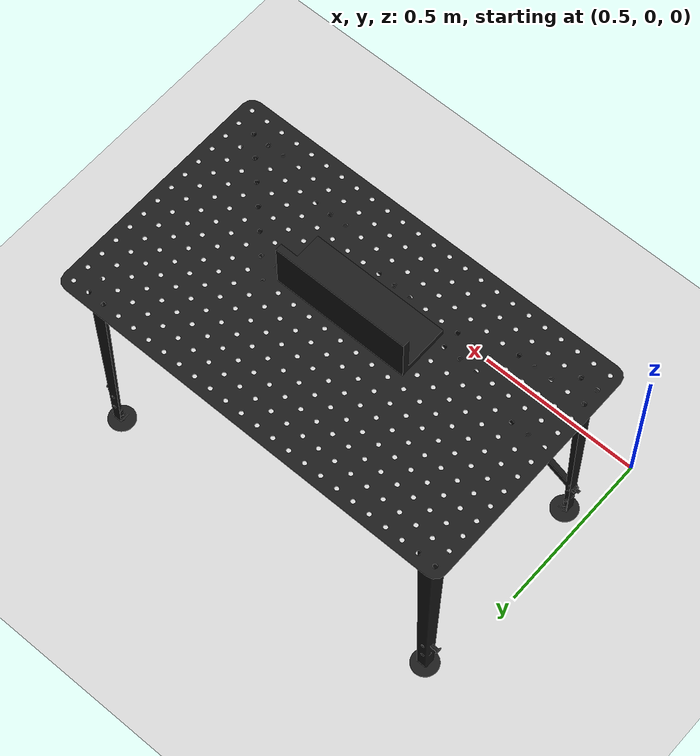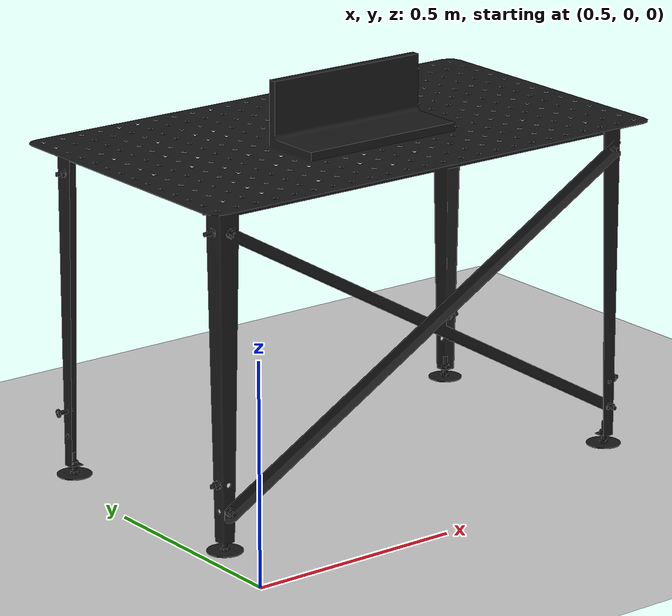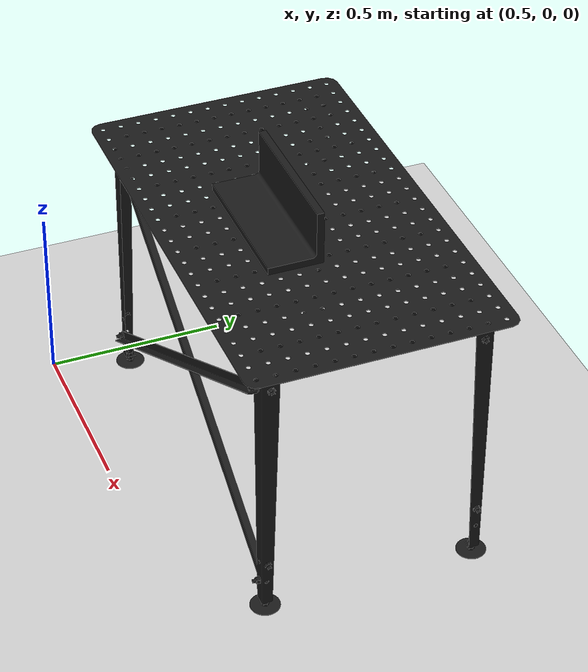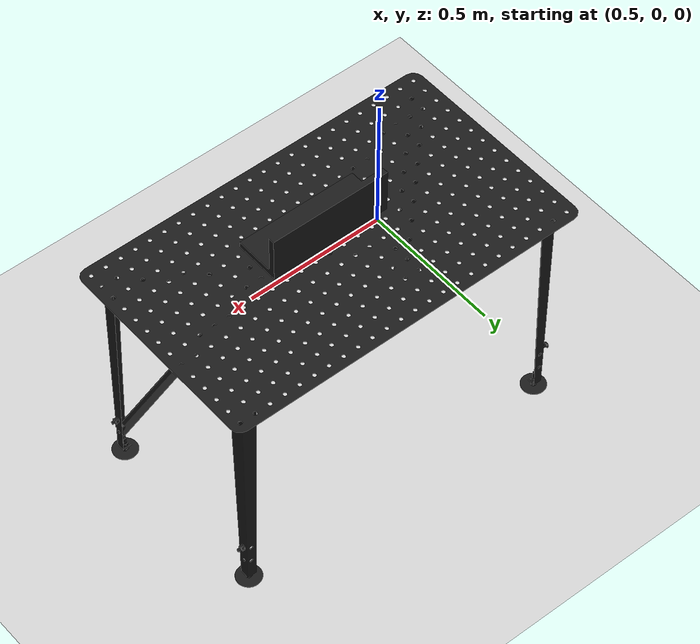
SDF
<?xml version="1.0" ?>

<sdf version="1.6">
  <world name="default">

    <!-- Plugin for simulating physics -->
    <plugin
      filename="gz-sim-physics-system"
      name="gz::sim::systems::Physics">
      <engine>
        <filename>libgz-physics-bullet-featherstone-plugin.so</filename>
      </engine>
    </plugin>

    <!-- Plugin for handling user commands -->
    <plugin
      filename="gz-sim-user-commands-system"
      name="gz::sim::systems::UserCommands">
    </plugin>

    <!-- Plugin for broadcasting scene updates -->
    <plugin
      filename="gz-sim-scene-broadcaster-system"
      name="gz::sim::systems::SceneBroadcaster">
    </plugin>

    <!-- Plugin for handling sensors like the LIDAR -->
    <plugin
      filename="gz-sim-sensors-system"
      name="gz::sim::systems::Sensors">
      <render_engine>ogre2</render_engine>
    </plugin>

    <!-- Plugin for IMU -->
    <plugin filename="gz-sim-imu-system"
      name="gz::sim::systems::Imu">
    </plugin>

    <!--Plugin for FT-->
    <plugin filename="gz-sim-forcetorque-system" name="gz::sim::systems::ForceTorque" />

    <!-- To add realistic gravity, do: 0.0 0.0 -9.8, otherwise do 0.0 0.0 0.0 -->
    <gravity>0.0 0.0 -9.8</gravity>

    <!-- Include a model of the Sun from an external URI -->
    <include>
      <uri>
        https://fuel.gazebosim.org/1.0/OpenRobotics/models/Sun
      </uri>
    </include>

    <!-- Local Ground Plane with modified friction -->
    <model name="ground_plane">
      <static>true</static>
      <link name="link">
        <collision name="collision">
          <geometry>
            <plane>
              <normal>0 0 1</normal>
            </plane>
          </geometry>
          <surface>
            <friction>
              <torsional>
                <coefficient>0.0</coefficient>
              </torsional>
            </friction>
          </surface>
        </collision>
        <visual name="visual">
          <geometry>
            <plane>
              <normal>0 0 1</normal>
              <size>100 100</size>
            </plane>
          </geometry>
          <material>
            <ambient>0.8 0.8 0.8 1</ambient>
            <diffuse>0.8 0.8 0.8 1</diffuse>
            <specular>0.8 0.8 0.8 1</specular>
          </material>
        </visual>
      </link>
    </model>

    <!--Weld table-->
    <include>
    <uri>model://weld_table</uri>
    </include>

    <!--Weld table-->
    <include>
    <uri>model://weld_part_test</uri>
    </include>

    <!-- Define scene properties -->
    <scene>
      <shadows>false</shadows>
    </scene>

  </world>
</sdf>

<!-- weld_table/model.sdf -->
<sdf version="1.6">
  <model name="weld_table">

    <static>true</static>
    <pose>1.1 0.5 0 0 0 0</pose>

    <link name="weld_table_link">

      <visual name="visual">
        <geometry>
          <mesh>
            <uri>model://weld_table/meshes/weld_table.STL</uri>
          </mesh>
        </geometry>
        <material>
          <ambient>0.1 0.1 0.1 1.0</ambient>
          <diffuse>0.1 0.1 0.1 1.0</diffuse>
          <specular>1.0 1.0 1.0 1.0</specular>
        </material>
      </visual>

      <collision name="collision">
        <geometry>
          <mesh>
            <uri>model://weld_table/meshes/weld_table.STL</uri>
          </mesh>
        </geometry>
      </collision>

    </link>

  </model>
</sdf>

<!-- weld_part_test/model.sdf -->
<sdf version="1.6">
  <model name="weld_part_test">

    <static>true</static>
    <pose>1.1 0.5 0.774 0 0 0</pose>

    <link name="weld_part_test_link">

      <visual name="visual">
        <geometry>
          <mesh>
            <uri>model://weld_part_test/meshes/weld_part_test.STL</uri>
          </mesh>
        </geometry>
        <material>
          <ambient>0.1 0.1 0.1 1.0</ambient>
          <diffuse>0.1 0.1 0.1 1.0</diffuse>
          <specular>1.0 1.0 1.0 1.0</specular>
        </material>
      </visual>

      <collision name="collision">
        <geometry>
          <mesh>
            <uri>model://weld_part_test/meshes/weld_part_test.STL</uri>
          </mesh>
        </geometry>
      </collision>

    </link>

  </model>
</sdf>
